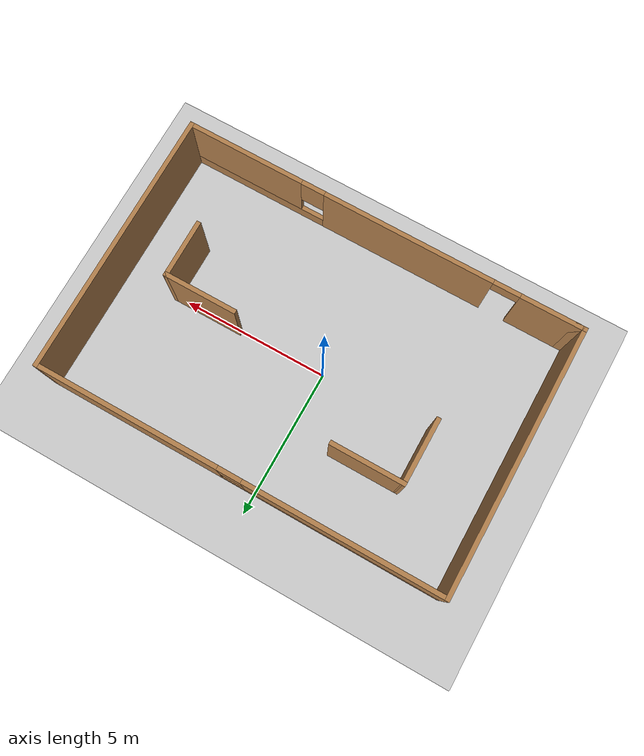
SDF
<sdf version="1.7">
 <world name="default">
  <light name="sun" type="directional">
   <pose>0 0 10 0 -0 0</pose>
   <diffuse>0.8 0.8 0.8 1</diffuse>
   <specular>0.2 0.2 0.2 1</specular>
   <attenuation>
    <range>1000</range>
    <constant>0.9</constant>
    <linear>0.01</linear>
    <quadratic>0.001</quadratic>
   </attenuation>
   <direction>-0.5 0.1 -0.9</direction>
   <spot><inner_angle>0</inner_angle><outer_angle>0</outer_angle><falloff>0</falloff></spot>
  </light>
  <model name="ground_plane">
   <static>1</static>
   <link name="link">
    <collision name="collision">
     <geometry><plane><normal>0 0 1</normal><size>100 100</size></plane></geometry>
     <surface><friction><ode><mu>100</mu><mu2>50</mu2></ode></friction></surface>
    </collision>
    <visual name="visual">
     <cast_shadows>0</cast_shadows>
     <geometry><plane><normal>0 0 1</normal><size>100 100</size></plane></geometry>
     <material>
      <script><uri>file://media/materials/scripts/gazebo.material</uri><name>Gazebo/Grey</name></script>
     </material>
    </visual>
   </link>
  </model>
  <gravity>0 0 -9.8</gravity>
  <magnetic_field>6e-06 2.3e-05 -4.2e-05</magnetic_field>
  <atmosphere type="adiabatic"/>
  <physics type="ode">
   <max_step_size>0.001</max_step_size>
   <real_time_factor>1</real_time_factor>
   <real_time_update_rate>1000</real_time_update_rate>
  </physics>
  <scene><ambient>0.4 0.4 0.4 1</ambient><background>0.7 0.7 0.7 1</background><shadows>1</shadows></scene>
  <spherical_coordinates>
   <surface_model>EARTH_WGS84</surface_model>
   <latitude_deg>0</latitude_deg>
   <longitude_deg>0</longitude_deg>
   <elevation>0</elevation>
   <heading_deg>0</heading_deg>
  </spherical_coordinates>
  <model name="map">
   <pose>0.468353 -0.128139 0 0 -0 0</pose>
   <link name="Wall_14">
    <pose>0 -4.425 0 0 -0 0</pose>
    <visual name="Wall_14_Visual_0">
     <pose>-5.7778 0 1.25 0 -0 0</pose>
     <geometry><box><size>2.19439 0.15 2.5</size></box></geometry>
     <material>
      <script><uri>file://media/materials/scripts/gazebo.material</uri><name>Gazebo/Wood</name></script>
      <ambient>1 1 1 1</ambient>
     </material>
     <meta><layer>0</layer></meta>
    </visual>
    <collision name="Wall_14_Collision_0">
     <geometry><box><size>2.19439 0.15 2.5</size></box></geometry>
     <pose>-5.7778 0 1.25 0 -0 0</pose>
    </collision>
    <visual name="Wall_14_Visual_1">
     <pose>-0.877465 0 1.25 0 -0 0</pose>
     <geometry><box><size>5.80628 0.15 2.5</size></box></geometry>
     <material>
      <script><uri>file://media/materials/scripts/gazebo.material</uri><name>Gazebo/Wood</name></script>
      <ambient>1 1 1 1</ambient>
     </material>
     <meta><layer>0</layer></meta>
    </visual>
    <collision name="Wall_14_Collision_1">
     <geometry><box><size>5.80628 0.15 2.5</size></box></geometry>
     <pose>-0.877465 0 1.25 0 -0 0</pose>
    </collision>
    <visual name="Wall_14_Visual_2">
     <pose>4.45034 0 0.25 0 -0 0</pose>
     <geometry><box><size>4.84932 0.15 0.5</size></box></geometry>
     <material>
      <script><uri>file://media/materials/scripts/gazebo.material</uri><name>Gazebo/Wood</name></script>
      <ambient>1 1 1 1</ambient>
     </material>
     <meta><layer>0</layer></meta>
    </visual>
    <collision name="Wall_14_Collision_2">
     <geometry><box><size>4.84932 0.15 0.5</size></box></geometry>
     <pose>4.45034 0 0.25 0 -0 0</pose>
    </collision>
    <visual name="Wall_14_Visual_3">
     <pose>4.85034 0 1.5 0 -0 0</pose>
     <geometry><box><size>4.04932 0.15 2</size></box></geometry>
     <material>
      <script><uri>file://media/materials/scripts/gazebo.material</uri><name>Gazebo/Wood</name></script>
      <ambient>1 1 1 1</ambient>
     </material>
     <meta><layer>0</layer></meta>
    </visual>
    <collision name="Wall_14_Collision_3">
     <geometry><box><size>4.04932 0.15 2</size></box></geometry>
     <pose>4.85034 0 1.5 0 -0 0</pose>
    </collision>
    <visual name="Wall_14_Visual_4">
     <pose>2.42568 0 1.9 0 -0 0</pose>
     <geometry><box><size>0.8 0.15 1.2</size></box></geometry>
     <material>
      <script><uri>file://media/materials/scripts/gazebo.material</uri><name>Gazebo/Wood</name></script>
      <ambient>1 1 1 1</ambient>
     </material>
     <meta><layer>0</layer></meta>
    </visual>
    <collision name="Wall_14_Collision_4">
     <geometry><box><size>0.8 0.15 1.2</size></box></geometry>
     <pose>2.42568 0 1.9 0 -0 0</pose>
    </collision>
    <visual name="Wall_14_Visual_5">
     <pose>-4.23061 0 2.25 0 -0 0</pose>
     <geometry><box><size>0.9 0.15 0.5</size></box></geometry>
     <material>
      <script><uri>file://media/materials/scripts/gazebo.material</uri><name>Gazebo/Wood</name></script>
      <ambient>1 1 1 1</ambient>
     </material>
     <meta><layer>0</layer></meta>
    </visual>
    <collision name="Wall_14_Collision_5">
     <geometry><box><size>0.9 0.15 0.5</size></box></geometry>
     <pose>-4.23061 0 2.25 0 -0 0</pose>
    </collision>
   </link>
   <link name="Wall_16">
    <collision name="Wall_16_Collision">
     <geometry><box><size>9 0.15 2.5</size></box></geometry>
     <pose>0 0 1.25 0 -0 0</pose>
    </collision>
    <visual name="Wall_16_Visual">
     <pose>0 0 1.25 0 -0 0</pose>
     <geometry><box><size>9 0.15 2.5</size></box></geometry>
     <material>
      <script><uri>file://media/materials/scripts/gazebo.material</uri><name>Gazebo/Wood</name></script>
      <ambient>1 1 1 1</ambient>
     </material>
     <meta><layer>0</layer></meta>
    </visual>
    <pose>6.8 0 0 0 -0 1.5708</pose>
   </link>
   <link name="Wall_17">
    <pose>0 4.425 0 0 -0 3.14159</pose>
    <visual name="Wall_17_Visual_0">
     <pose>-3.74909 0 1.25 0 -0 0</pose>
     <geometry><box><size>6.25182 0.15 2.5</size></box></geometry>
     <material>
      <script><uri>file://media/materials/scripts/gazebo.material</uri><name>Gazebo/Wood</name></script>
      <ambient>1 1 1 1</ambient>
     </material>
     <meta><layer>0</layer></meta>
    </visual>
    <collision name="Wall_17_Collision_0">
     <geometry><box><size>6.25182 0.15 2.5</size></box></geometry>
     <pose>-3.74909 0 1.25 0 -0 0</pose>
    </collision>
    <visual name="Wall_17_Visual_1">
     <pose>3.12591 0 0.25 0 -0 0</pose>
     <geometry><box><size>7.49818 0.15 0.5</size></box></geometry>
     <material>
      <script><uri>file://media/materials/scripts/gazebo.material</uri><name>Gazebo/Wood</name></script>
      <ambient>1 1 1 1</ambient>
     </material>
     <meta><layer>0</layer></meta>
    </visual>
    <collision name="Wall_17_Collision_1">
     <geometry><box><size>7.49818 0.15 0.5</size></box></geometry>
     <pose>3.12591 0 0.25 0 -0 0</pose>
    </collision>
    <visual name="Wall_17_Visual_2">
     <pose>3.52591 0 1.5 0 -0 0</pose>
     <geometry><box><size>6.69818 0.15 2</size></box></geometry>
     <material>
      <script><uri>file://media/materials/scripts/gazebo.material</uri><name>Gazebo/Wood</name></script>
      <ambient>1 1 1 1</ambient>
     </material>
     <meta><layer>0</layer></meta>
    </visual>
    <collision name="Wall_17_Collision_2">
     <geometry><box><size>6.69818 0.15 2</size></box></geometry>
     <pose>3.52591 0 1.5 0 -0 0</pose>
    </collision>
    <visual name="Wall_17_Visual_3">
     <pose>-0.22318 0 1.9 0 -0 0</pose>
     <geometry><box><size>0.8 0.15 1.2</size></box></geometry>
     <material>
      <script><uri>file://media/materials/scripts/gazebo.material</uri><name>Gazebo/Wood</name></script>
      <ambient>1 1 1 1</ambient>
     </material>
     <meta><layer>0</layer></meta>
    </visual>
    <collision name="Wall_17_Collision_3">
     <geometry><box><size>0.8 0.15 1.2</size></box></geometry>
     <pose>-0.22318 0 1.9 0 -0 0</pose>
    </collision>
   </link>
   <link name="Wall_19">
    <collision name="Wall_19_Collision">
     <geometry><box><size>2.25 0.15 2.5</size></box></geometry>
     <pose>0 0 1.25 0 -0 0</pose>
    </collision>
    <visual name="Wall_19_Visual">
     <pose>0 0 1.25 0 -0 0</pose>
     <geometry><box><size>2.25 0.15 2.5</size></box></geometry>
     <material>
      <script><uri>file://media/materials/scripts/gazebo.material</uri><name>Gazebo/Wood</name></script>
      <ambient>1 1 1 1</ambient>
     </material>
     <meta><layer>0</layer></meta>
    </visual>
    <pose>-4.25374 1.16015 0 0 -0 1.5708</pose>
   </link>
   <link name="Wall_20">
    <collision name="Wall_20_Collision">
     <geometry><box><size>2.5 0.15 2.5</size></box></geometry>
     <pose>0 0 1.25 0 -0 0</pose>
    </collision>
    <visual name="Wall_20_Visual">
     <pose>0 0 1.25 0 -0 0</pose>
     <geometry><box><size>2.5 0.15 2.5</size></box></geometry>
     <material>
      <script><uri>file://media/materials/scripts/gazebo.material</uri><name>Gazebo/Wood</name></script>
      <ambient>1 1 1 1</ambient>
     </material>
     <meta><layer>0</layer></meta>
    </visual>
    <pose>-3.07874 2.21015 0 0 -0 0</pose>
   </link>
   <link name="Wall_22">
    <collision name="Wall_22_Collision">
     <geometry><box><size>2.5 0.15 2.5</size></box></geometry>
     <pose>0 0 1.25 0 -0 0</pose>
    </collision>
    <visual name="Wall_22_Visual">
     <pose>0 0 1.25 0 -0 0</pose>
     <geometry><box><size>2.5 0.15 2.5</size></box></geometry>
     <material>
      <script><uri>file://media/materials/scripts/gazebo.material</uri><name>Gazebo/Wood</name></script>
      <ambient>1 1 1 1</ambient>
     </material>
     <meta><layer>0</layer></meta>
    </visual>
    <pose>3.74479 0.179539 0 0 -0 0</pose>
   </link>
   <link name="Wall_23">
    <collision name="Wall_23_Collision">
     <geometry><box><size>2 0.15 2.5</size></box></geometry>
     <pose>0 0 1.25 0 -0 0</pose>
    </collision>
    <visual name="Wall_23_Visual">
     <pose>0 0 1.25 0 -0 0</pose>
     <geometry><box><size>2 0.15 2.5</size></box></geometry>
     <material>
      <script><uri>file://media/materials/scripts/gazebo.material</uri><name>Gazebo/Wood</name></script>
      <ambient>1 1 1 1</ambient>
     </material>
     <meta><layer>0</layer></meta>
    </visual>
    <pose>4.91979 -0.745461 0 0 -0 -1.5708</pose>
   </link>
   <link name="Wall_4">
    <collision name="Wall_4_Collision">
     <geometry><box><size>9 0.15 2.5</size></box></geometry>
     <pose>0 0 1.25 0 -0 0</pose>
    </collision>
    <visual name="Wall_4_Visual">
     <pose>0 0 1.25 0 -0 0</pose>
     <geometry><box><size>9 0.15 2.5</size></box></geometry>
     <material>
      <script><uri>file://media/materials/scripts/gazebo.material</uri><name>Gazebo/Wood</name></script>
      <ambient>1 1 1 1</ambient>
     </material>
     <meta><layer>0</layer></meta>
    </visual>
    <pose>-6.8 0 0 0 -0 -1.5708</pose>
   </link>
   <link name="Wall_5">
    <collision name="Wall_5_Collision">
     <geometry><box><size>0.4 0.15 2.5</size></box></geometry>
     <pose>0 0 1.25 0 -0 0</pose>
    </collision>
    <visual name="Wall_5_Visual">
     <pose>0 0 1.25 0 -0 0</pose>
     <geometry><box><size>0.4 0.15 2.5</size></box></geometry>
     <material>
      <script><uri>file://media/materials/scripts/gazebo.material</uri><name>Gazebo/Wood</name></script>
      <ambient>1 1 1 1</ambient>
     </material>
     <meta><layer>0</layer></meta>
    </visual>
    <pose>-6.675 -4.425 0 0 -0 0</pose>
   </link>
   <static>1</static>
  </model>
 </world>
</sdf>
